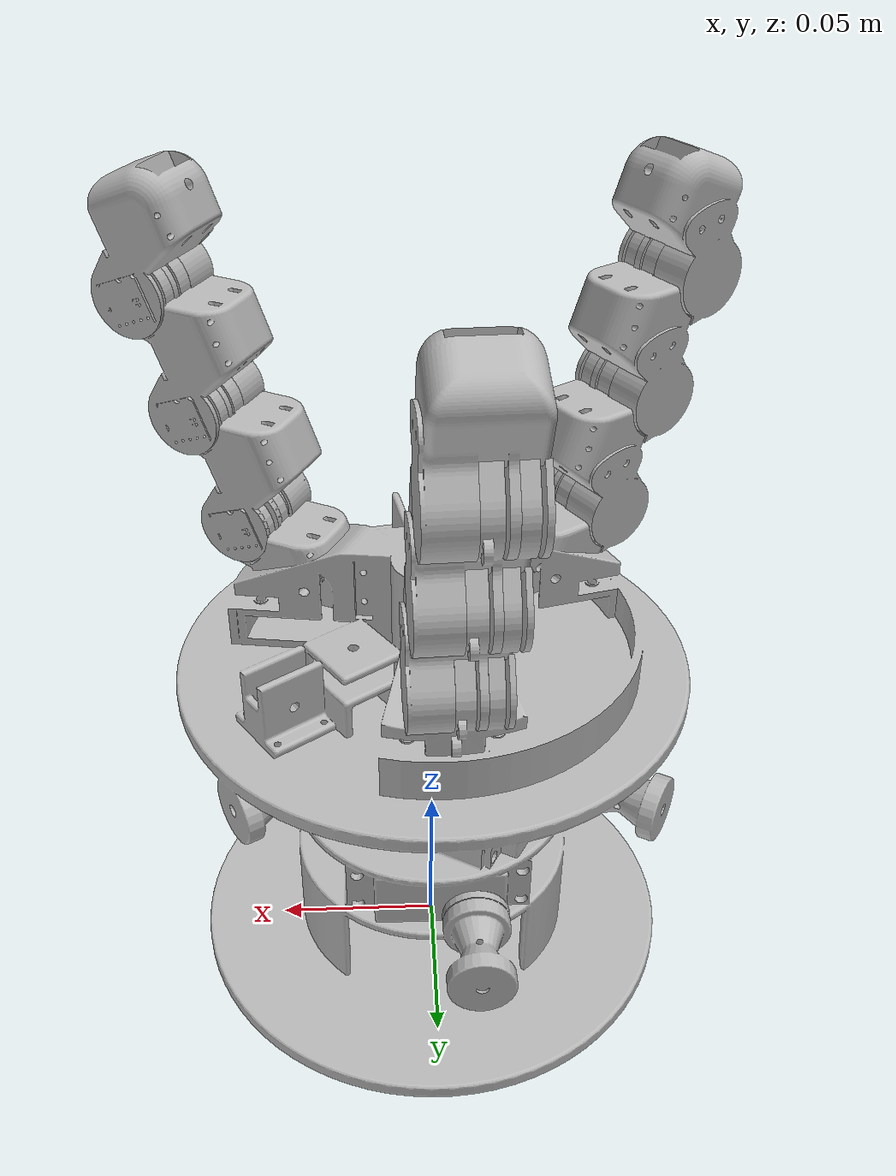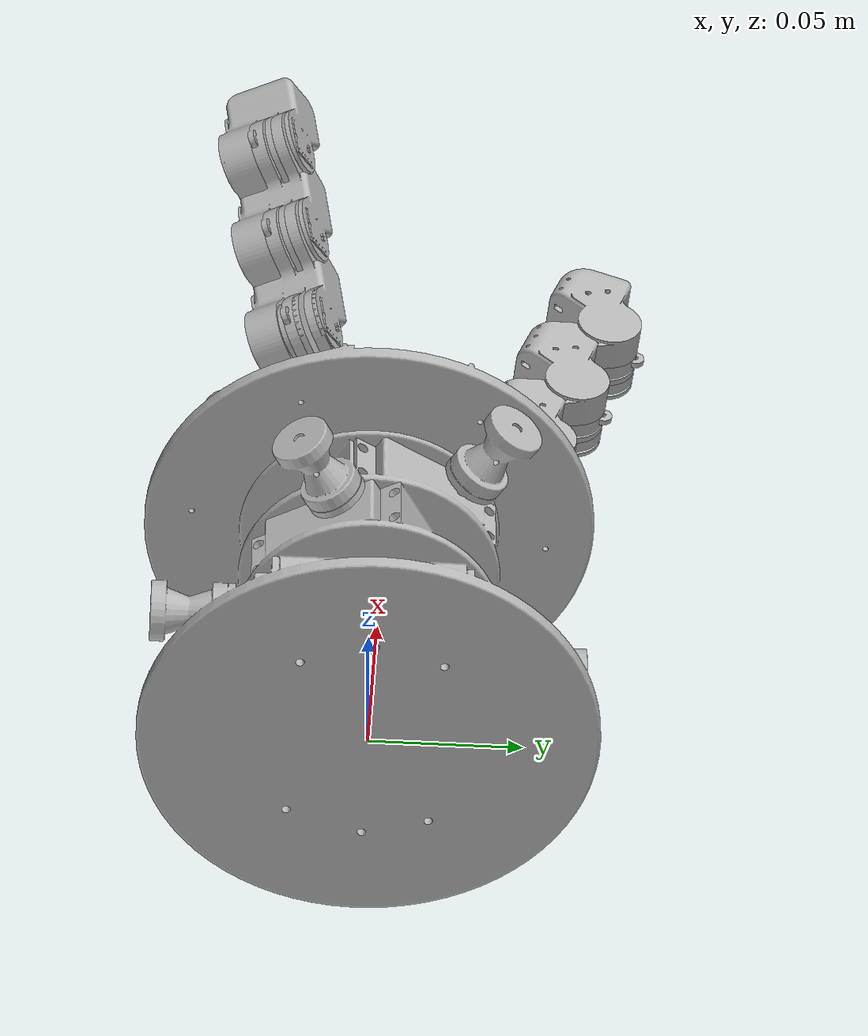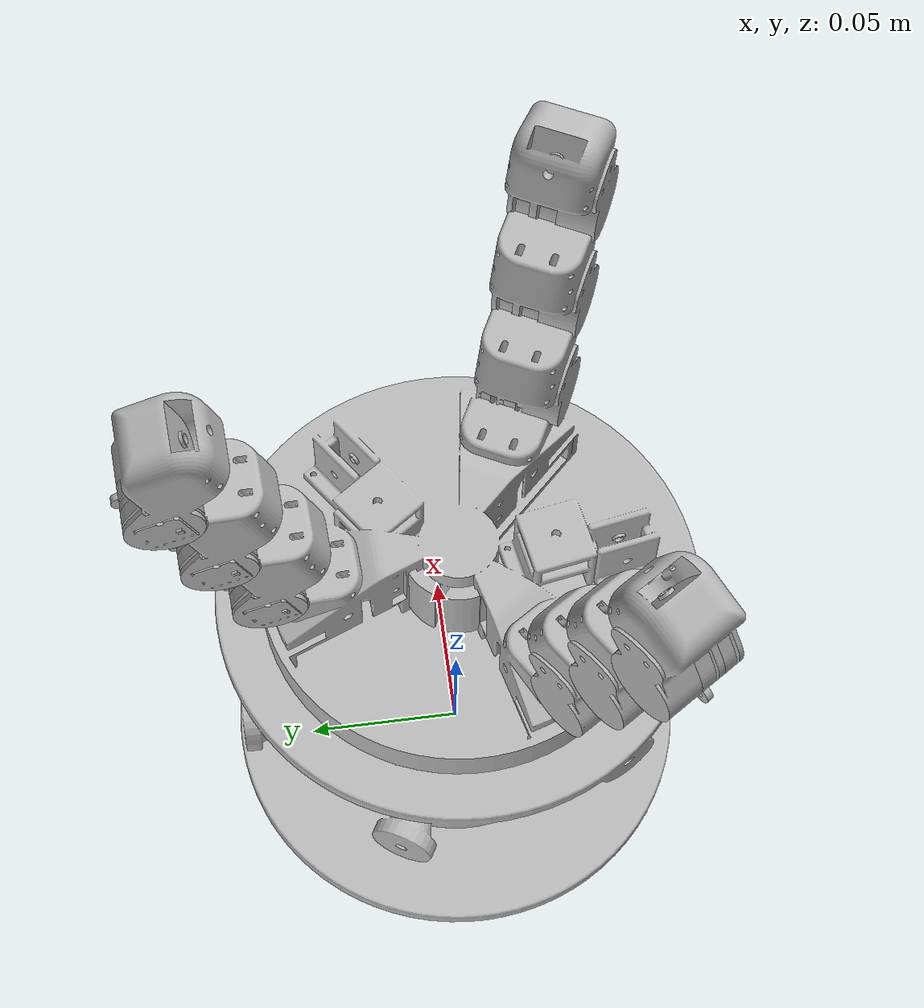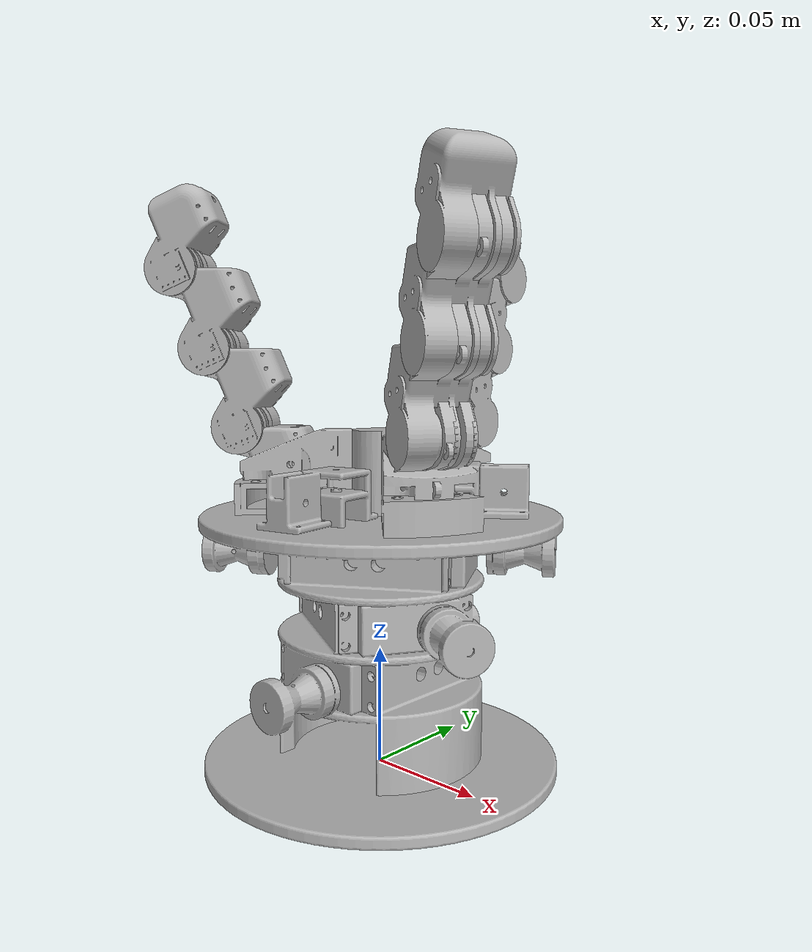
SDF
<?xml version="1.0" ?>
<sdf version="1.6">
	<model name="roboy_stronger_hand">
		<link name="base">
			<self_collide>false</self_collide>
			<pose frame="">0.0 0.0 0.0 0.0 -0.0 0.0</pose>
			<inertial>
				<pose frame="">0.0 0.0 0.0 0 0 0</pose>
				<mass>0.6466508671788694</mass>
				<inertia>
					<ixx>0.004971781313833718</ixx>
					<ixy>1.7792322143262627e-06</ixy>
					<ixz>-6.123425922212316e-06</ixz>
					<iyy>0.004993146170747278</iyy>
					<iyz>1.006241844765893e-05</iyz>
					<izz>0.0011876195101763675</izz>
				</inertia>
			</inertial>
			<collision name="base_collision">
				<geometry>
					<mesh>
						<uri>model://roboy_stronger_hand/meshes/CAD/base.stl</uri>
						<scale>0.001 0.001 0.001</scale>
					</mesh>
				</geometry>
			</collision>
			<visual name="base_visual">
				<geometry>
					<mesh>
						<uri>model://roboy_stronger_hand/meshes/CAD/base.stl</uri>
						<scale>0.001 0.001 0.001</scale>
					</mesh>
				</geometry>
			</visual>
		</link>
		<link name="finger0_link0">
			<self_collide>false</self_collide>
			<pose frame="">0.04888175054338879 -0.030967618151687436 0.15126444074441506 0.0 -0.0 0.0</pose>
			<inertial>
				<pose frame="">0.0 0.0 0.0 0 0 0</pose>
				<mass>0.047029626236403846</mass>
				<inertia>
					<ixx>0.0011299873405926724</ixx>
					<ixy>7.093233555691829e-05</ixy>
					<ixz>0.00021912337581530547</ixz>
					<iyy>0.001197280622503536</iyy>
					<iyz>-0.00034856049732259953</iyz>
					<izz>0.00016184185945785834</izz>
				</inertia>
			</inertial>
			<collision name="finger0_link0_collision">
				<geometry>
					<mesh>
						<uri>model://roboy_stronger_hand/meshes/CAD/finger0_link0.stl</uri>
						<scale>0.001 0.001 0.001</scale>
					</mesh>
				</geometry>
			</collision>
			<visual name="finger0_link0_visual">
				<geometry>
					<mesh>
						<uri>model://roboy_stronger_hand/meshes/CAD/finger0_link0.stl</uri>
						<scale>0.001 0.001 0.001</scale>
					</mesh>
				</geometry>
			</visual>
		</link>
		<link name="finger0_link1">
			<self_collide>false</self_collide>
			<pose frame="">0.060820093392996696 -0.03643322566755608 0.1836915183754113 0.0 -0.0 0.0</pose>
			<inertial>
				<pose frame="">0.0 0.0 0.0 0 0 0</pose>
				<mass>0.047183190182445406</mass>
				<inertia>
					<ixx>0.0016635501461951016</ixx>
					<ixy>0.00010427530095291587</ixy>
					<ixz>0.00031460944563534117</ixz>
					<iyy>0.0017754631036794365</iyy>
					<iyz>-0.0005279468116495094</iyz>
					<izz>0.0002415679061273644</izz>
				</inertia>
			</inertial>
			<collision name="finger0_link1_collision">
				<geometry>
					<mesh>
						<uri>model://roboy_stronger_hand/meshes/CAD/finger0_link1.stl</uri>
						<scale>0.001 0.001 0.001</scale>
					</mesh>
				</geometry>
			</collision>
			<visual name="finger0_link1_visual">
				<geometry>
					<mesh>
						<uri>model://roboy_stronger_hand/meshes/CAD/finger0_link1.stl</uri>
						<scale>0.001 0.001 0.001</scale>
					</mesh>
				</geometry>
			</visual>
		</link>
		<link name="finger0_link2">
			<self_collide>false</self_collide>
			<pose frame="">0.07196787864597158 -0.0421953460746441 0.21445174097902814 0.0 -0.0 0.0</pose>
			<inertial>
				<pose frame="">0.0 0.0 0.0 0 0 0</pose>
				<mass>0.04421389063415177</mass>
				<inertia>
					<ixx>0.002118709968991892</ixx>
					<ixy>0.0001339994255281652</ixy>
					<ixz>0.000399192463179922</ixz>
					<iyy>0.0022682797257233276</iyy>
					<iyz>-0.0006821941864510164</iyz>
					<izz>0.00031118167418652985</izz>
				</inertia>
			</inertial>
			<collision name="finger0_link2_collision">
				<geometry>
					<mesh>
						<uri>model://roboy_stronger_hand/meshes/CAD/finger0_link2.stl</uri>
						<scale>0.001 0.001 0.001</scale>
					</mesh>
				</geometry>
			</collision>
			<visual name="finger0_link2_visual">
				<geometry>
					<mesh>
						<uri>model://roboy_stronger_hand/meshes/CAD/finger0_link2.stl</uri>
						<scale>0.001 0.001 0.001</scale>
					</mesh>
				</geometry>
			</visual>
		</link>
		<link name="finger1_link0">
			<self_collide>false</self_collide>
			<pose frame="">0.0003430690572288467 0.05747291081852664 0.1512249097648939 0.0 -0.0 0.0</pose>
			<inertial>
				<pose frame="">0.0 0.0 0.0 0 0 0</pose>
				<mass>0.04718351532486051</mass>
				<inertia>
					<ixx>0.0012435008653234676</ixx>
					<ixy>-8.427695409445265e-07</ixy>
					<ixz>-0.0004100470163425384</ixz>
					<iyy>0.0010881243275326427</iyy>
					<iyz>-1.037768343462941e-06</iyz>
					<izz>0.00016025447775655776</izz>
				</inertia>
			</inertial>
			<collision name="finger1_link0_collision">
				<geometry>
					<mesh>
						<uri>model://roboy_stronger_hand/meshes/CAD/finger1_link0.stl</uri>
						<scale>0.001 0.001 0.001</scale>
					</mesh>
				</geometry>
			</collision>
			<visual name="finger1_link0_visual">
				<geometry>
					<mesh>
						<uri>model://roboy_stronger_hand/meshes/CAD/finger1_link0.stl</uri>
						<scale>0.001 0.001 0.001</scale>
					</mesh>
				</geometry>
			</visual>
		</link>
		<link name="finger1_link1">
			<self_collide>false</self_collide>
			<pose frame="">-0.000783079911090087 0.06940775782116612 0.18411208910290597 0.0 -0.0 0.0</pose>
			<inertial>
				<pose frame="">0.0 0.0 0.0 0 0 0</pose>
				<mass>0.047183325951929096</mass>
				<inertia>
					<ixx>0.001835297984482169</ixx>
					<ixy>2.6572010980927252e-06</ixy>
					<ixz>-0.0006029035604196037</ixz>
					<iyy>0.0016084966653826006</iyy>
					<iyz>8.211032557720427e-06</iyz>
					<izz>0.00023172707423759053</izz>
				</inertia>
			</inertial>
			<collision name="finger1_link1_collision">
				<geometry>
					<mesh>
						<uri>model://roboy_stronger_hand/meshes/CAD/finger1_link1.stl</uri>
						<scale>0.001 0.001 0.001</scale>
					</mesh>
				</geometry>
			</collision>
			<visual name="finger1_link1_visual">
				<geometry>
					<mesh>
						<uri>model://roboy_stronger_hand/meshes/CAD/finger1_link1.stl</uri>
						<scale>0.001 0.001 0.001</scale>
					</mesh>
				</geometry>
			</visual>
		</link>
		<link name="finger1_link2">
			<self_collide>false</self_collide>
			<pose frame="">-0.001309659808245194 0.08086325425576009 0.21529135508599384 0.0 -0.0 0.0</pose>
			<inertial>
				<pose frame="">0.0 0.0 0.0 0 0 0</pose>
				<mass>0.044212294698077054</mass>
				<inertia>
					<ixx>0.0023442069644887217</ixx>
					<ixy>4.485030259637368e-06</ixy>
					<ixz>-0.0007689799939363709</ixz>
					<iyy>0.0020559499719011763</iyy>
					<iyz>1.3135224763344747e-05</iyz>
					<izz>0.0002926782437165849</izz>
				</inertia>
			</inertial>
			<collision name="finger1_link2_collision">
				<geometry>
					<mesh>
						<uri>model://roboy_stronger_hand/meshes/CAD/finger1_link2.stl</uri>
						<scale>0.001 0.001 0.001</scale>
					</mesh>
				</geometry>
			</collision>
			<visual name="finger1_link2_visual">
				<geometry>
					<mesh>
						<uri>model://roboy_stronger_hand/meshes/CAD/finger1_link2.stl</uri>
						<scale>0.001 0.001 0.001</scale>
					</mesh>
				</geometry>
			</visual>
		</link>
		<link name="finger2_link0">
			<self_collide>false</self_collide>
			<pose frame="">-0.049291066534781 -0.02942750160364497 0.15761266353570627 0.0 -0.0 0.0</pose>
			<inertial>
				<pose frame="">0.0 0.0 0.0 0 0 0</pose>
				<mass>0.02439015308674264</mass>
				<inertia>
					<ixx>0.0006332225724217131</ixx>
					<ixy>-3.522476778680743e-05</ixy>
					<ixz>0.00011416585265821693</ixz>
					<iyy>0.00067080404114436</iyy>
					<iyz>0.00018920842143503678</iyz>
					<izz>8.395367536596163e-05</izz>
				</inertia>
			</inertial>
			<collision name="finger2_link0_collision">
				<geometry>
					<mesh>
						<uri>model://roboy_stronger_hand/meshes/CAD/finger2_link0.stl</uri>
						<scale>0.001 0.001 0.001</scale>
					</mesh>
				</geometry>
			</collision>
			<visual name="finger2_link0_visual">
				<geometry>
					<mesh>
						<uri>model://roboy_stronger_hand/meshes/CAD/finger2_link0.stl</uri>
						<scale>0.001 0.001 0.001</scale>
					</mesh>
				</geometry>
			</visual>
		</link>
		<link name="finger2_link1">
			<self_collide>false</self_collide>
			<pose frame="">-0.06115979829262914 -0.03631874131476089 0.18357903065668782 0.0 -0.0 0.0</pose>
			<inertial>
				<pose frame="">0.0 0.0 0.0 0 0 0</pose>
				<mass>0.04718306036578207</mass>
				<inertia>
					<ixx>0.001661457588950999</ixx>
					<ixy>-0.00010467722972368621</ixy>
					<ixz>0.0003158900565980486</ixz>
					<iyy>0.0017752059280042747</iyy>
					<iyz>0.0005291880100374501</iyz>
					<izz>0.00024313308032011203</izz>
				</inertia>
			</inertial>
			<collision name="finger2_link1_collision">
				<geometry>
					<mesh>
						<uri>model://roboy_stronger_hand/meshes/CAD/finger2_link1.stl</uri>
						<scale>0.001 0.001 0.001</scale>
					</mesh>
				</geometry>
			</collision>
			<visual name="finger2_link1_visual">
				<geometry>
					<mesh>
						<uri>model://roboy_stronger_hand/meshes/CAD/finger2_link1.stl</uri>
						<scale>0.001 0.001 0.001</scale>
					</mesh>
				</geometry>
			</visual>
		</link>
		<link name="finger2_link2">
			<self_collide>false</self_collide>
			<pose frame="">-0.07194875254932709 -0.04323737612636419 0.2142285545742739 0.0 -0.0 0.0</pose>
			<inertial>
				<pose frame="">0.0 0.0 0.0 0 0 0</pose>
				<mass>0.044212358453506656</mass>
				<inertia>
					<ixx>0.002118051944312003</ixx>
					<ixy>-0.00013709720943342943</ixy>
					<ixz>0.0004098259498920495</ixz>
					<iyy>0.0022641494826582827</iyy>
					<iyz>0.0006806223023702369</iyz>
					<izz>0.000314975016828264</izz>
				</inertia>
			</inertial>
			<collision name="finger2_link2_collision">
				<geometry>
					<mesh>
						<uri>model://roboy_stronger_hand/meshes/CAD/finger2_link2.stl</uri>
						<scale>0.001 0.001 0.001</scale>
					</mesh>
				</geometry>
			</collision>
			<visual name="finger2_link2_visual">
				<geometry>
					<mesh>
						<uri>model://roboy_stronger_hand/meshes/CAD/finger2_link2.stl</uri>
						<scale>0.001 0.001 0.001</scale>
					</mesh>
				</geometry>
			</visual>
		</link>
		<joint name="finger1_joint1" type="revolute">
			<parent>finger1_link0</parent>
			<child>finger1_link1</child>
			<pose frame="">-0.009869373042555876 0.00010189478186875433 -0.006790421751673392 0 0 0</pose>
			<axis>
				<xyz>0.9986295347545742 0.052335956242945195 -1.9182670514842593e-16</xyz>
				<limit>
					<lower>0.0</lower>
					<upper>0.7853981633974483</upper>
				</limit>
				<use_parent_model_frame>0</use_parent_model_frame>
			</axis>
		</joint>
		<joint name="finger1_joint2" type="revolute">
			<parent>finger1_link1</parent>
			<child>finger1_link2</child>
			<pose frame="">-0.010468606206713508 0.0005745299503639068 -0.0050804460072546576 0 0 0</pose>
			<axis>
				<xyz>0.9986295347545742 0.0523359562429458 -4.439305816916505e-16</xyz>
				<limit>
					<lower>-1.5707963267948966</lower>
					<upper>-0.7853981633974483</upper>
				</limit>
				<use_parent_model_frame>0</use_parent_model_frame>
			</axis>
		</joint>
		<joint name="finger2_joint1" type="revolute">
			<parent>finger2_link0</parent>
			<child>finger2_link1</child>
			<pose frame="">0.005095291177030248 -0.008436518364837756 -0.00681082139506735 0 0 0</pose>
			<axis>
				<xyz>-0.5446390350150285 0.8386705679454266 1.044599924753999e-14</xyz>
				<limit>
					<lower>0.0</lower>
					<upper>0.7853981633974483</upper>
				</limit>
				<use_parent_model_frame>0</use_parent_model_frame>
			</axis>
		</joint>
		<joint name="finger2_joint2" type="revolute">
			<parent>finger2_link1</parent>
			<child>finger2_link2</child>
			<pose frame="">0.004923478346462744 -0.009232070573392264 -0.005124561674758184 0 0 0</pose>
			<axis>
				<xyz>-0.5446390350150275 0.8386705679454262 1.0434565700815622e-14</xyz>
				<limit>
					<lower>-1.5707963267948966</lower>
					<upper>-0.7853981633974483</upper>
				</limit>
				<use_parent_model_frame>0</use_parent_model_frame>
			</axis>
		</joint>
		<joint name="finger0_joint1" type="revolute">
			<parent>finger0_link0</parent>
			<child>finger0_link1</child>
			<pose frame="">0.004811492933876282 0.008603893331495104 -0.006807657841849064 0 0 0</pose>
			<axis>
				<xyz>-0.45399049973954836 -0.8910065241883696 -1.1815428294294802e-15</xyz>
				<limit>
					<lower>0.0</lower>
					<upper>0.7853981633974483</upper>
				</limit>
				<use_parent_model_frame>0</use_parent_model_frame>
			</axis>
		</joint>
		<joint name="finger0_joint2" type="revolute">
			<parent>finger0_link1</parent>
			<child>finger0_link2</child>
			<pose frame="">0.0055728950865856055 0.008859142791405636 -0.005116445535628067 0 0 0</pose>
			<axis>
				<xyz>-0.45399049973954736 -0.8910065241883695 -1.4530482322667689e-15</xyz>
				<limit>
					<lower>-1.5707963267948966</lower>
					<upper>-0.7853981633974483</upper>
				</limit>
				<use_parent_model_frame>0</use_parent_model_frame>
			</axis>
		</joint>
		<joint name="finger0_joint0" type="revolute">
			<parent>base</parent>
			<child>finger0_link0</child>
			<pose frame="">0.0021167053793624026 0.003299117617673999 -0.006832015120690276 0 0 0</pose>
			<axis>
				<xyz>0.45399049973954675 0.8910065241883685 1.6812061326297294e-15</xyz>
				<limit>
					<lower>0.0</lower>
					<upper>0.0</upper>
				</limit>
				<use_parent_model_frame>0</use_parent_model_frame>
			</axis>
		</joint>
		<joint name="finger1_joint0" type="revolute">
			<parent>base</parent>
			<child>finger1_link0</child>
			<pose frame="">-0.009869708949562087 0.00010861018141905098 -0.0067924841411680075 0 0 0</pose>
			<axis>
				<xyz>0.9986295347545739 0.05233595624294468 -8.477199736192449e-15</xyz>
				<limit>
					<lower>-0.3490658503988655</lower>
					<upper>0.39269908169872414</upper>
				</limit>
				<use_parent_model_frame>0</use_parent_model_frame>
			</axis>
		</joint>
		<joint name="finger2_joint0" type="revolute">
			<parent>base</parent>
			<child>finger2_link0</child>
			<pose frame="">0.004187326506447562 -0.007613571055795676 -0.013180237911980655 0 0 0</pose>
			<axis>
				<xyz>-0.5446390350150272 0.8386705679454243 1.015840586882218e-14</xyz>
				<limit>
					<lower>-0.39269908169872414</lower>
					<upper>0.3839724354387525</upper>
				</limit>
				<use_parent_model_frame>0</use_parent_model_frame>
			</axis>
		</joint>
		<plugin filename="libmusc_plugin.so" name="musc_plugin">
			<myoMuscle name="motor0">
				<link name="base">
					<viaPoint type="FIXPOINT">0.030575109429579812 -0.022148547854714335 0.14348712784750203</viaPoint>
				</link>
				<link name="finger0_link0">
					<viaPoint type="FIXPOINT">-0.007304700265567696 0.0015298120845102492 0.02448521133370095</viaPoint>
				</link>
				<link name="finger0_link1">
					<viaPoint type="FIXPOINT">-0.007333855709491291 0.0014885486532014447 0.02450956861254248</viaPoint>
				</link>
				<link name="finger0_link2">
					<viaPoint type="FIXPOINT">-0.005012016162103175 0.00543802049871775 0.020152036315494826</viaPoint>
				</link>
			</myoMuscle>
			<myoMuscle name="motor1">
				<link name="base">
					<viaPoint type="FIXPOINT">0.0020919308392339255 0.03443242562376852 0.14348712784750253</viaPoint>
				</link>
				<link name="finger1_link0">
					<viaPoint type="FIXPOINT">-0.04791671109293108 0.07734875109227078 0.024167663137236152</viaPoint>
				</link>
				<link name="finger1_link1">
					<viaPoint type="FIXPOINT">-0.060980867003851726 0.09474249021122871 0.02462982723374644</viaPoint>
				</link>
				<link name="finger1_link2">
					<viaPoint type="FIXPOINT">-0.0772450316148652 0.1121479927534847 0.020703777939811374</viaPoint>
				</link>
			</myoMuscle>
			<myoMuscle name="motor2">
				<link name="base">
					<viaPoint type="FIXPOINT">-0.03266704026881284 -0.018525217355241486 0.14348712784750262</viaPoint>
				</link>
				<link name="finger2_link0">
					<viaPoint type="FIXPOINT">-0.09250955789946698 0.00472821377628816 0.02455847074093983</viaPoint>
				</link>
				<link name="finger2_link1">
					<viaPoint type="FIXPOINT">-0.11540866783634035 0.0024796342719989894 0.024467176747838836</viaPoint>
				</link>
				<link name="finger2_link2">
					<viaPoint type="FIXPOINT">-0.13505388872139076 -0.0026421793608519106 0.0199967261095302</viaPoint>
				</link>
			</myoMuscle>
			<myoMuscle name="motor3">
				<link name="base">
					<viaPoint type="FIXPOINT">-0.049201214789979054 -0.03054882594176964 0.12550000000000147</viaPoint>
				</link>
				<link name="finger2_link0">
					<viaPoint type="FIXPOINT">-0.008420602550846503 -0.0068585312238283345 -0.01738975566801674</viaPoint>
				</link>
			</myoMuscle>
			<myoMuscle name="motor4">
				<link name="finger2_link0">
					<viaPoint type="FIXPOINT">-0.008420602550846503 -0.0068585312238283345 -0.01738975566801674</viaPoint>
				</link>
				<link name="finger2_link1">
					<viaPoint type="FIXPOINT">-0.007512637880270816 -0.007681478532874917 -0.011020339151083434</viaPoint>
				</link>
			</myoMuscle>
			<myoMuscle name="motor5">
				<link name="finger2_link1">
					<viaPoint type="FIXPOINT">-0.007512637880270816 -0.007681478532874917 -0.011020339151083434</viaPoint>
				</link>
				<link name="finger2_link2">
					<viaPoint type="FIXPOINT">-0.007684450710838302 -0.008477030741429416 -0.009334079430774267</viaPoint>
				</link>
			</myoMuscle>
			<myoMuscle name="motor6">
				<link name="base">
					<viaPoint type="FIXPOINT">-0.004205229103330388 0.05776076827240656 0.12550000000000164</viaPoint>
				</link>
				<link name="finger2_link0">
					<viaPoint type="FIXPOINT">0.04472501577693843 0.09744561762784977 -0.017389755668016545</viaPoint>
				</link>
			</myoMuscle>
			<myoMuscle name="motor7">
				<link name="finger2_link0">
					<viaPoint type="FIXPOINT">0.04472501577693843 0.09744561762784977 -0.017389755668016545</viaPoint>
					<viaPoint type="FIXPOINT">0.04359009919156922 0.10954745481780112 0.015946782238943805</viaPoint>
				</link>
			</myoMuscle>
			<myoMuscle name="motor8">
				<link name="finger2_link1">
					<viaPoint type="FIXPOINT">0.055458830949417365 0.11643869452891703 -0.010019584882037762</viaPoint>
				</link>
				<link name="finger2_link2">
					<viaPoint type="FIXPOINT">0.06512197214480259 0.1352854609436095 -0.007779867072117206</viaPoint>
				</link>
			</myoMuscle>
			<myoMuscle name="motor9">
				<link name="base">
					<viaPoint type="FIXPOINT">0.05212490721767595 -0.025238548903985913 0.1255000000000006</viaPoint>
				</link>
				<link name="finger2_link0">
					<viaPoint type="FIXPOINT">0.11047950830822177 -0.0006272404571970381 -0.017389755668017752</viaPoint>
				</link>
			</myoMuscle>
			<myoMuscle name="motor10">
				<link name="finger2_link0">
					<viaPoint type="FIXPOINT">0.11047950830822177 -0.0006272404571970381 -0.017389755668017752</viaPoint>
					<viaPoint type="FIXPOINT">0.1215131006120389 -0.007932625891789433 0.0151505244702809</viaPoint>
				</link>
			</myoMuscle>
			<myoMuscle name="motor11">
				<link name="finger2_link1">
					<viaPoint type="FIXPOINT">0.13338183236988704 -0.0010413861806735137 -0.010815842650700666</viaPoint>
					<viaPoint type="FIXPOINT">0.14529101977557124 -0.006548257127850978 0.021635592259137155</viaPoint>
				</link>
			</myoMuscle>
		</plugin>
	</model>
</sdf>
